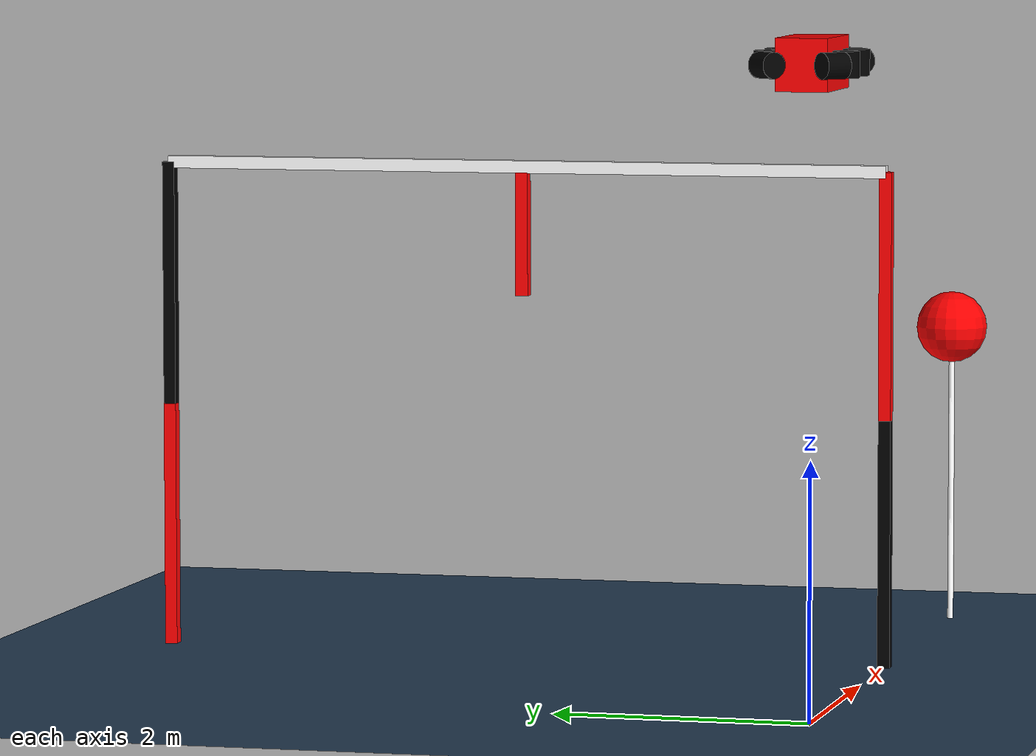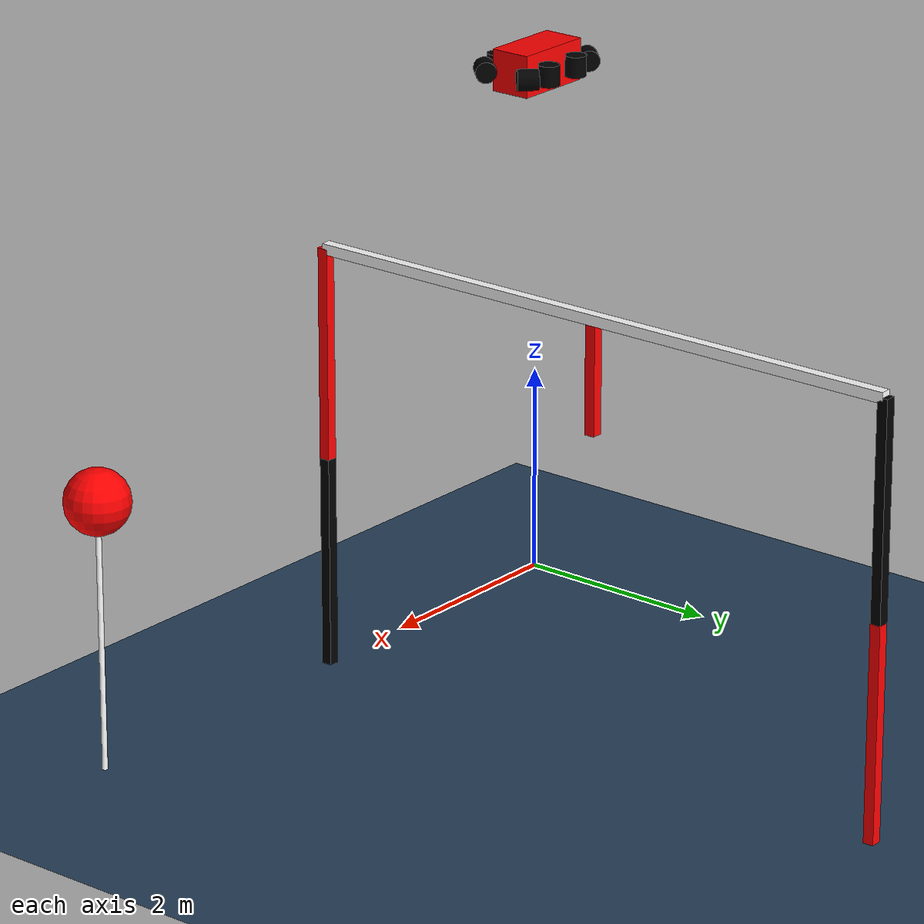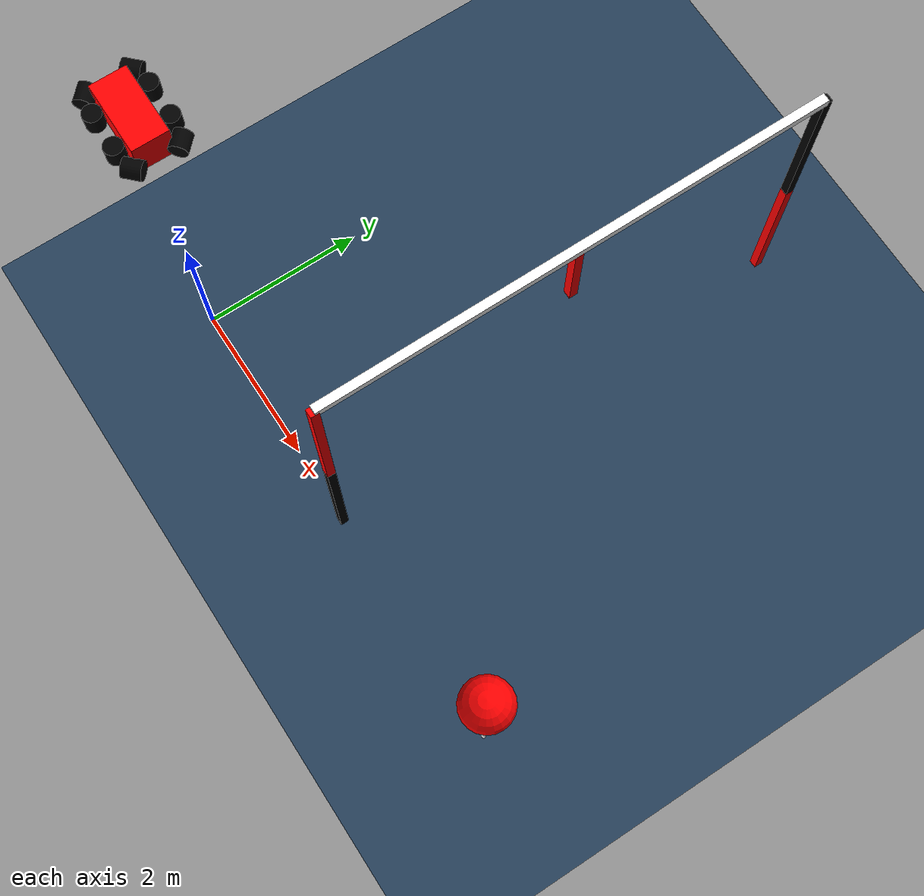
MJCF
<mujoco model="course">
    <!-- Simulation Options: Water Dynamics -->
    <option timestep="0.0001" density="1000" viscosity="1e-6" cone="elliptic" noslip_iterations="3"/>

    <!-- Load external assets: actuation and sensors -->
    <include file="project.xml"/>

    <asset>
    <!-- Floor Asset Definition -->
      <texture name="grid" type="2d" builtin="checker" rgb1=".1 .2 .3"
      rgb2=".2 .3 .4" width="300" height="300" mark="edge" markrgb=".2 .3 .4"/>
      <material name="grid" texture="grid" texrepeat="2 2" texuniform="true"
      reflectance=".2"/>
    </asset>

    <worldbody>
        <!-- Lighting & environment -->

        <!-- Key Sun Light -->
        <light name="sun" type="directional" dir="-0.3 -0.2 -1" diffuse="1 1 1"
          specular="0.3 0.3 0.3" castshadow="true" />

        <!-- Fill Light from front -->
        <light name="fill1"  pos="2 2 4" diffuse="0.6 0.7 0.8" specular="0.2 0.2 0.2" />

        <!-- Fill Light from opposite side -->
        <light name="fill2"  pos="-2 -2 3" diffuse="0.4 0.5 0.6" specular="0.1 0.1 0.1" />

        <!-- Inserting the floor grid -->
        <geom size="20 20 .01" type="plane" material="grid"/>

        <!-- Load external assets: insert the AUV -->
        <include file="auv.xml"/>

        <!-- ========= PROPS ========= -->

        <!-- Buoy Obstacle-->
        <body name="buoy_1" pos="6 0 2.5">
            <!-- Main Buoy -->
            <geom type="sphere" size=".3" mass="1" rgba="1 0 0 1" pos="0 0 0"/>
            <!-- Bouy Moore -->
            <geom type="cylinder" size=".025 1.25" mass=".1" rgba="1 1 1 1" pos="0 0 -1.25"/>
        </body>

        <!-- Gate Obstacle -->
        <body name="gate_1" pos="3 3 4">
            <!-- Left Pole Top-->
            <geom type="box" size=".05 .05 1" rgba="0 0 0 1" pos="0 3 -1"/>
            <!-- Left Pole Bottom -->
            <geom type="box" size=".05 .05 1" rgba="1 0 0 1" pos="0 3 -3"/>
            <!-- Right Pole Top-->
            <geom type="box" size=".05 .05 1" rgba="1 0 0 1" pos="0 -3 -1"/>
            <!-- Right Pole Bottom -->
            <geom type="box" size=".05 .05 1" rgba="0 0 0 1" pos="0 -3 -3"/>
            <!-- Top Bar -->
            <geom type="box" size=".05 3 .05" rgba="1 1 1 1" pos="0 0 0"/>
            <!-- Middle Pole -->
            <geom type="box" size=".05 .05 .5" rgba="1 0 0 1" pos="0 0 -.55"/>
        </body>

    </worldbody>

</mujoco>

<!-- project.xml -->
<mujoco model="project">
    <!-- Actuator block to drive robot -->
    <actuator>
        <!-- Front Diagonal Thrusters -->
        <motor name="thrust0" site="thrust0_site" gear=".4472 -.8944 0 0 0 0" />
        <motor name="thrust1" site="thrust1_site" gear=".4473 .8944 0 0 0 0" />

        <!-- Right Vertical Thrusters -->
        <motor name="thrust2" site="thrust2_site" gear="0 0 -1  0 0 0" />
        <motor name="thrust3" site="thrust3_site" gear="0 0 -1  0 0 0" />

        <!-- Back Diagonal Thrusters -->
        <motor name="thrust4" site="thrust4_site" gear=".4473 -.8944 0 0 0 0" />
        <motor name="thrust5" site="thrust5_site" gear=".4473 .8944 0 0 0 0" />

        <!-- Left Vertical Thrusters -->
        <motor name="thrust6" site="thrust6_site" gear="0 0 -1 0 0 0" />
        <motor name="thrust7" site="thrust7_site" gear="0 0 -1 0 0 0" />
    </actuator>

    <!-- Sensor block to measure orientation -->
    <sensor>
        <framepos name="body_pos" objtype="site" objname="imu"/>
        <framequat name="body_orientation" objtype="site" objname="imu"/>
        <framelinvel name="body_linvel" objtype="site" objname="imu"/>
        <frameangvel name="body_angvel" objtype="site" objname="imu"/>
   </sensor>

</mujoco>

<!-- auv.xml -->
<mujoco model="auv">
    <!-- SeaWolf IX AUV model -->
    <body name="SWIX" pos="0 0 5">
        <site name="imu" pos="0 0 0"/>
        <freejoint name="SWIX_freejoint"/>
        <!-- AUV Frame -->
        <geom name="red_box" type="box" size=".4 .2 .2" rgba="1 0 0 1" pos="0 0 0" mass="22"/>

        <!-- Vertical Thrusters -->
        <body name="thruster_2" pos=".2 -.3 0">
            <geom type="cylinder" size=".1 .1" rgba="0 0 0 1" mass=".1"/>
        </body>
        <site name="thrust2_site" pos=".2 -.2 0"/>

        <body name="thruster_3" pos="-.2 -.3 0">
            <geom type="cylinder" size=".1 .1" rgba="0 0 0 1"  mass=".1"/>
        </body>
        <site name="thrust3_site" pos="-.2 -.2 0"/>

        <body name="thruster6" pos="-.2 .3 0">
            <geom type="cylinder" size=".1 .1" rgba="0 0 0 1" mass=".1"/>
        </body>
        <site name="thrust6_site" pos="-.2 .2 0"/>

        <body name="thruster_7" pos=".2 .3 0">
            <geom type="cylinder" size=".1 .1" rgba="0 0 0 1" mass=".1"/>
        </body>
        <site name="thrust7_site" pos=".2 .2 0"/>

        <!-- Diagonal Thrusters -->
        <body name="thruster_0" pos=".45 .25 0" euler="90 45 0">
            <geom type="cylinder" size=".1 .1" rgba="0 0 0 1" mass=".1"/>
        </body>
        <site name="thrust0_site" pos=".4 .2 0"/>

        <body name="thruster_1" pos=".45 -.25 0" euler="90 135 0">
            <geom type="cylinder" size=".1 .1" rgba="0 0 0 1" mass=".1"/>
        </body>
        <site name="thrust1_site" pos=".4 -.2 0"/>

        <body name="thruster_4" pos="-.45 -.25 0" euler="90 45 0">
            <geom type="cylinder" size=".1 .1" rgba="0 0 0 1" mass=".1"/>
        </body>
        <site name="thrust4_site" pos="-.4 -.2 0"/>

        <body name="thruster_5" pos="-.45 .25 0" euler="90 135 0">
            <geom type="cylinder" size=".1 .1" rgba="0 0 0 1" mass=".1"/>
        </body>
        <site name="thrust5_site" pos="-.4 .2 0"/>
    </body>

</mujoco>
